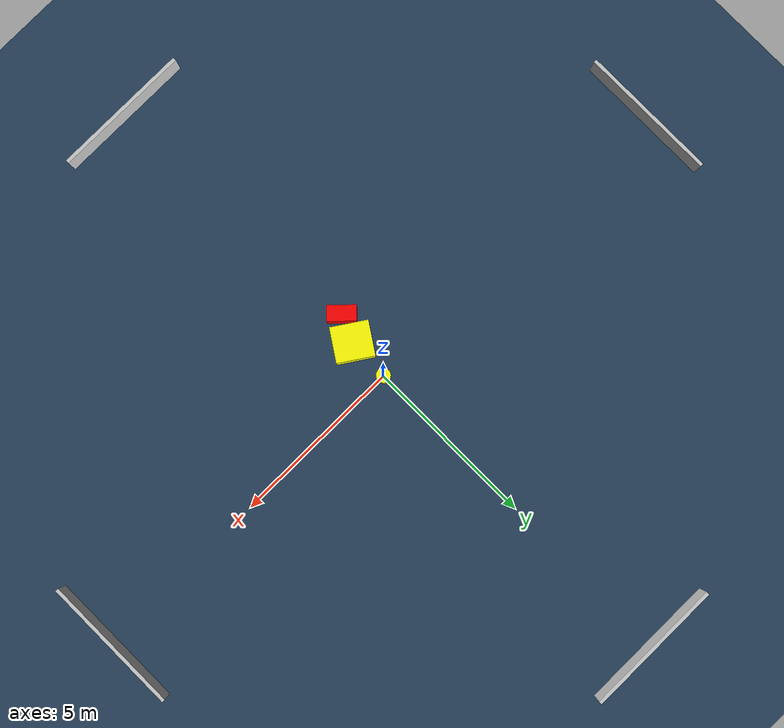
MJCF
<?xml version="1.0" ?>
<mujoco model="generated_environment">
  <option timestep="0.01" integrator="RK4" cone="elliptic"/>
  <default>
    <geom density="1"/>
  </default>
  <asset>
    <texture builtin="gradient" height="3072" name="skybox" rgb1="0.3 0.5 0.7" rgb2="0 0 0" type="skybox" width="512"/>
    <texture builtin="checker" height="300" name="groundplane" rgb1="0.2 0.3 0.4" rgb2="0.1 0.2 0.3" type="2d" width="300"/>
    <material name="groundplane" reflectance="0.2" texrepeat="5 5" texture="groundplane"/>
  </asset>
  <worldbody>
    <light dir="0 0 -1" directional="true" pos="0 0 1.5"/>
    <geom condim="3" friction="0.5 0.005 0.001" material="groundplane" name="floor" pos="0 0 0" size="0 0 0.05" type="plane"/>
    <body name="walls">
      <geom name="wall_1" condim="4" pos="-10.0 0.0 0.3" rgba="0.800000011920929 0.800000011920929 0.800000011920929 1.0" size="0.05 2.0 0.3" type="box"/>
      <geom name="wall_2" condim="4" pos="10.0 0.0 0.3" rgba="0.800000011920929 0.800000011920929 0.800000011920929 1.0" size="0.05 2.0 0.3" type="box"/>
      <geom name="wall_3" condim="4" pos="0.0 -10.0 0.3" rgba="0.800000011920929 0.800000011920929 0.800000011920929 1.0" size="2.0 0.05 0.3" type="box"/>
      <geom name="wall_4" condim="4" pos="0.0 10.0 0.3" rgba="0.800000011920929 0.800000011920929 0.800000011920929 1.0" size="2.0 0.05 0.3" type="box"/>
    </body>
    <body name="robot">
      <joint name="joint_x" type="slide" pos="0 0 0" axis="1 0 0"/>
      <joint name="joint_y" type="slide" pos="0 0 0" axis="0 1 0"/>
      <geom name="robot" type="cylinder" pos="0.0 0.0 0.2" size="0.2 0.2 0.0" mass="5.0" friction="1.0 0.005 0.0001" condim="4" rgba="1.0 1.0 0.0 1.0"/>
    </body>
    <body name="obstacle_1_movable">
      <geom name="obstacle_1_movable" condim="4" pos="-0.03633776954188693 -1.2072625020948933 0.3" euler="0 0 236.6536697099881" friction="0.0 0.005 0.001" rgba="1.0 1.0 0.0 1.0" size="0.48870324401983306 0.5300817525648276 0.3" type="box" mass="0.1"/>
      <joint type="free"/>
    </body>
    <body name="obstacle_2_static">
      <geom name="obstacle_2_static" condim="4" pos="-0.364012404870824 -1.951372380562153 0.3" euler="0 0 136.70241144659414" friction="0.0 0.005 0.001" rgba="1.0 0.0 0.0 1.0" size="0.4014274590124689 0.21615215476257 0.3" type="box"/>
    </body>
  </worldbody>
  <actuator>
    <motor name="actuator_x" joint="joint_x" gear="1" ctrlrange="-1 1"/>
    <motor name="actuator_y" joint="joint_y" gear="1" ctrlrange="-1 1"/>
  </actuator>
</mujoco>
